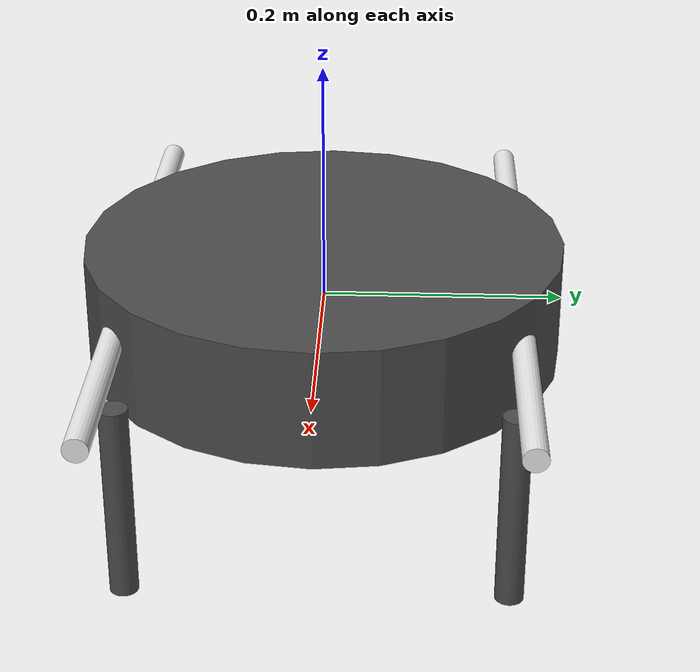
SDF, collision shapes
<?xml version="1.0" encoding="UTF-8"?>
<sdf version='1.9'>
  <model name='f450'>
    <include merge='true'>
      <uri>model://f450/f450_base_model.sdf</uri>
    </include>
    <plugin filename="gz-sim-multicopter-motor-model-system" name="gz::sim::systems::MulticopterMotorModel">
      <jointName>prop_0_joint</jointName>
      <linkName>prop_0_link</linkName>
      <turningDirection>ccw</turningDirection>
      <timeConstantUp>0.0125</timeConstantUp>
      <timeConstantDown>0.025</timeConstantDown>
      <maxRotVelocity>1000.0</maxRotVelocity>
      <motorConstant>8.54858e-06</motorConstant>
      <momentConstant>0.016</momentConstant>
      <commandSubTopic>command/motor_speed</commandSubTopic>
      <motorNumber>0</motorNumber>
      <rotorDragCoefficient>8.06428e-05</rotorDragCoefficient>
      <rollingMomentCoefficient>1e-06</rollingMomentCoefficient>
      <rotorVelocitySlowdownSim>10</rotorVelocitySlowdownSim>
      <motorType>velocity</motorType>
    </plugin>
    <plugin filename="gz-sim-multicopter-motor-model-system" name="gz::sim::systems::MulticopterMotorModel">
      <jointName>prop_1_joint</jointName>
      <linkName>prop_1_link</linkName>
      <turningDirection>ccw</turningDirection>
      <timeConstantUp>0.0125</timeConstantUp>
      <timeConstantDown>0.025</timeConstantDown>
      <maxRotVelocity>1000.0</maxRotVelocity>
      <motorConstant>8.54858e-06</motorConstant>
      <momentConstant>0.016</momentConstant>
      <commandSubTopic>command/motor_speed</commandSubTopic>
      <motorNumber>1</motorNumber>
      <rotorDragCoefficient>8.06428e-05</rotorDragCoefficient>
      <rollingMomentCoefficient>1e-06</rollingMomentCoefficient>
      <rotorVelocitySlowdownSim>10</rotorVelocitySlowdownSim>
      <motorType>velocity</motorType>
    </plugin>
    <plugin filename="gz-sim-multicopter-motor-model-system" name="gz::sim::systems::MulticopterMotorModel">
      <jointName>prop_2_joint</jointName>
      <linkName>prop_2_link</linkName>
      <turningDirection>cw</turningDirection>
      <timeConstantUp>0.0125</timeConstantUp>
      <timeConstantDown>0.025</timeConstantDown>
      <maxRotVelocity>1000.0</maxRotVelocity>
      <motorConstant>8.54858e-06</motorConstant>
      <momentConstant>0.016</momentConstant>
      <commandSubTopic>command/motor_speed</commandSubTopic>
      <motorNumber>2</motorNumber>
      <rotorDragCoefficient>8.06428e-05</rotorDragCoefficient>
      <rollingMomentCoefficient>1e-06</rollingMomentCoefficient>
      <rotorVelocitySlowdownSim>10</rotorVelocitySlowdownSim>
      <motorType>velocity</motorType>
    </plugin>
    <plugin filename="gz-sim-multicopter-motor-model-system" name="gz::sim::systems::MulticopterMotorModel">
      <jointName>prop_3_joint</jointName>
      <linkName>prop_3_link</linkName>
      <turningDirection>cw</turningDirection>
      <timeConstantUp>0.0125</timeConstantUp>
      <timeConstantDown>0.025</timeConstantDown>
      <maxRotVelocity>1000.0</maxRotVelocity>
      <motorConstant>8.54858e-06</motorConstant>
      <momentConstant>0.016</momentConstant>
      <commandSubTopic>command/motor_speed</commandSubTopic>
      <motorNumber>3</motorNumber>
      <rotorDragCoefficient>8.06428e-05</rotorDragCoefficient>
      <rollingMomentCoefficient>1e-06</rollingMomentCoefficient>
      <rotorVelocitySlowdownSim>10</rotorVelocitySlowdownSim>
      <motorType>velocity</motorType>
    </plugin>
  </model>
</sdf>

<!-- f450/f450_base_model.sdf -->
<sdf version="1.6">
  <model name="f450_base_model">

    <link name="base_link">
      <!-- Body physics {-->
      <inertial>
        <mass>1.7</mass>
        <inertia>
          <ixx>0.01735416666666667</ixx>
          <ixy>0</ixy>
          <ixz>0</ixz>
          <iyy>0.01735416666666667</iyy>
          <iyz>0</iyz>
          <izz>0.034</izz>
        </inertia>
      </inertial>
      <collision name="base_link_collision">
        <pose>
          <x>0</x>
          <y>0</y>
          <z>-0.05</z>
          <roll>0</roll>
          <pitch>0</pitch>
          <yaw>0</yaw>
        </pose>
        <geometry>
          <cylinder>
            <length>0.1</length>
            <radius>0.2</radius>
          </cylinder>
        </geometry>
        <surface>
          <contact>
            <ode>
              <min_depth>0.001</min_depth>
              <max_vel>0.0</max_vel>
            </ode>
          </contact>
          <friction>
            <ode/>
          </friction>
        </surface>
      </collision>
      <plugin filename="libgazebo_multirotor_base_plugin.so" name="multirotor_base_plugin">
        <robotNamespace/>
        <linkName>base_link</linkName>
        <rotorVelocitySlowdownSim>0.0159236</rotorVelocitySlowdownSim>
      </plugin>
      <!-- Body visuals {-->
      <!-- Boards {-->
      <visual name="lower_central_board_visual">
        <pose>0 0 -0.05 0 0 0</pose>
        <geometry>
          <mesh>
            <uri>model://f450/meshes/dji_f450_central_bottom.dae</uri>
            <scale>1 1 1</scale>
          </mesh>
        </geometry>
        <material>
          <script>
            <name>Gazebo/DarkGrey</name>
            <uri>file://media/materials/scripts/gazebo.material</uri>
          </script>
        </material>
      </visual>
      <visual name="upper_central_board_visual">
        <pose>0 0 -0.012000000000000004 0 0 0</pose>
        <geometry>
          <mesh>
            <uri>model://f450/meshes/dji_f450_central_top.dae</uri>
            <scale>1 1 1</scale>
          </mesh>
        </geometry>
        <material>
          <script>
            <name>Gazebo/DarkGrey</name>
            <uri>file://media/materials/scripts/gazebo.material</uri>
          </script>
        </material>
      </visual>
      <!-- Arms {-->
      <visual name="front_right_arm_visual">
        <pose>0.045961940777125586 -0.045961940777125586 -0.012000000000000004 0 0 -0.7853981633974483</pose>
        <geometry>
          <mesh>
            <uri>model://f450/meshes/dji_f450_arm.dae</uri>
            <scale>1 1 1</scale>
          </mesh>
        </geometry>
        <material>
          <script>
            <name>Gazebo/White</name>
            <uri>file://media/materials/scripts/gazebo.material</uri>
          </script>
        </material>
      </visual>
      <visual name="front_left_arm_visual">
        <pose>0.045961940777125586 0.045961940777125586 -0.012000000000000004 0 0 0.7853981633974483</pose>
        <geometry>
          <mesh>
            <uri>model://f450/meshes/dji_f450_arm.dae</uri>
            <scale>1 1 1</scale>
          </mesh>
        </geometry>
        <material>
          <script>
            <name>Gazebo/White</name>
            <uri>file://media/materials/scripts/gazebo.material</uri>
          </script>
        </material>
      </visual>
      <visual name="back_right_arm_visual">
        <pose>-0.045961940777125586 -0.045961940777125586 -0.012000000000000004 0 0 -2.356194490192345</pose>
        <geometry>
          <mesh>
            <uri>model://f450/meshes/dji_f450_arm.dae</uri>
            <scale>1 1 1</scale>
          </mesh>
        </geometry>
        <material>
          <script>
            <name>Gazebo/Red</name>
            <uri>file://media/materials/scripts/gazebo.material</uri>
          </script>
        </material>
      </visual>
      <visual name="back_left_arm_visual">
        <pose>-0.045961940777125586 0.045961940777125586 -0.012000000000000004 0 0 2.356194490192345</pose>
        <geometry>
          <mesh>
            <uri>model://f450/meshes/dji_f450_arm.dae</uri>
            <scale>1 1 1</scale>
          </mesh>
        </geometry>
        <material>
          <script>
            <name>Gazebo/Red</name>
            <uri>file://media/materials/scripts/gazebo.material</uri>
          </script>
        </material>
      </visual>
      <!-- Intel NUC {-->
      <visual name="NUC_visual">
        <pose>0 0 0.023 0 0 0</pose>
        <geometry>
          <mesh>
            <uri>model://f450/meshes/dji_f450_nuc.dae</uri>
            <scale>0.001 0.001 0.001</scale>
          </mesh>
        </geometry>
        <material>
          <script>
            <name>Gazebo/DarkGrey</name>
            <uri>file://media/materials/scripts/gazebo.material</uri>
          </script>
        </material>
      </visual>
      <!-- Pixhawk {-->
      <visual name="pixhawk_visual">
        <pose>0 0 -0.0425 0 0 0</pose>
        <geometry>
          <mesh>
            <uri>model://f450/meshes/pixhawk.dae</uri>
            <scale>1 1 1</scale>
          </mesh>
        </geometry>
        <material>
          <script>
            <name>Gazebo/DarkGrey</name>
            <uri>file://media/materials/scripts/gazebo.material</uri>
          </script>
        </material>
      </visual>
      <!-- Legs {-->
      <visual name="front_right_leg_visual">
        <pose>0.15754339084836277 -0.15754339084836277 -0.11000000000000001 0 0 2.356194490192345</pose>
        <geometry>
          <mesh>
            <uri>model://f450/meshes/dji_f450_leg_170mm.dae</uri>
            <scale>0.001 0.001 0.001</scale>
          </mesh>
        </geometry>
        <material>
          <script>
            <name>Gazebo/White</name>
            <uri>file://media/materials/scripts/gazebo.material</uri>
          </script>
        </material>
      </visual>
      <collision name="front_right_leg_collision">
        <pose>0.15754339084836277 -0.15754339084836277 -0.11000000000000001 0 0 2.356194490192345</pose>
        <geometry>
          <cylinder>
            <length>0.17</length>
            <radius>0.012</radius>
          </cylinder>
        </geometry>
        <surface>
          <contact>
            <ode>
              <min_depth>0.01</min_depth>
              <max_vel>0.0</max_vel>
            </ode>
          </contact>
          <friction>
            <ode/>
          </friction>
        </surface>
      </collision>
      <visual name="front_left_leg_visual">
        <pose>0.15754339084836277 0.15754339084836277 -0.11000000000000001 0 0 -2.356194490192345</pose>
        <geometry>
          <mesh>
            <uri>model://f450/meshes/dji_f450_leg_170mm.dae</uri>
            <scale>0.001 0.001 0.001</scale>
          </mesh>
        </geometry>
        <material>
          <script>
            <name>Gazebo/White</name>
            <uri>file://media/materials/scripts/gazebo.material</uri>
          </script>
        </material>
      </visual>
      <collision name="front_left_leg_collision">
        <pose>0.15754339084836277 0.15754339084836277 -0.11000000000000001 0 0 -2.356194490192345</pose>
        <geometry>
          <cylinder>
            <length>0.17</length>
            <radius>0.012</radius>
          </cylinder>
        </geometry>
        <surface>
          <contact>
            <ode>
              <min_depth>0.01</min_depth>
              <max_vel>0.0</max_vel>
            </ode>
          </contact>
          <friction>
            <ode/>
          </friction>
        </surface>
      </collision>
      <visual name="back_right_leg_visual">
        <pose>-0.15754339084836277 -0.15754339084836277 -0.11000000000000001 0 0 0.7853981633974483</pose>
        <geometry>
          <mesh>
            <uri>model://f450/meshes/dji_f450_leg_170mm.dae</uri>
            <scale>0.001 0.001 0.001</scale>
          </mesh>
        </geometry>
        <material>
          <script>
            <name>Gazebo/Red</name>
            <uri>file://media/materials/scripts/gazebo.material</uri>
          </script>
        </material>
      </visual>
      <collision name="back_right_leg_collision">
        <pose>-0.15754339084836277 -0.15754339084836277 -0.11000000000000001 0 0 0.7853981633974483</pose>
        <geometry>
          <cylinder>
            <length>0.17</length>
            <radius>0.012</radius>
          </cylinder>
        </geometry>
        <surface>
          <contact>
            <ode>
              <min_depth>0.01</min_depth>
              <max_vel>0.0</max_vel>
            </ode>
          </contact>
          <friction>
            <ode/>
          </friction>
        </surface>
      </collision>
      <visual name="back_left_leg_visual">
        <pose>-0.15754339084836277 0.15754339084836277 -0.11000000000000001 0 0 -0.7853981633974483</pose>
        <geometry>
          <mesh>
            <uri>model://f450/meshes/dji_f450_leg_170mm.dae</uri>
            <scale>0.001 0.001 0.001</scale>
          </mesh>
        </geometry>
        <material>
          <script>
            <name>Gazebo/Red</name>
            <uri>file://media/materials/scripts/gazebo.material</uri>
          </script>
        </material>
      </visual>
      <collision name="back_left_leg_collision">
        <pose>-0.15754339084836277 0.15754339084836277 -0.11000000000000001 0 0 -0.7853981633974483</pose>
        <geometry>
          <cylinder>
            <length>0.17</length>
            <radius>0.012</radius>
          </cylinder>
        </geometry>
        <surface>
          <contact>
            <ode>
              <min_depth>0.01</min_depth>
              <max_vel>0.0</max_vel>
            </ode>
          </contact>
          <friction>
            <ode/>
          </friction>
        </surface>
      </collision>
      <!-- Motors {-->
      <visual name="front_right_motor_visual">
        <pose>0.1626345596729059 -0.1626345596729059 -0.012000000000000004 0 0 0</pose>
        <geometry>
          <mesh>
            <uri>model://f450/meshes/dji_f450_rotor.dae</uri>
            <scale>1 1 1</scale>
          </mesh>
        </geometry>
        <material>
          <script>
            <name>Gazebo/Black</name>
            <uri>file://media/materials/scripts/gazebo.material</uri>
          </script>
        </material>
      </visual>
      <visual name="front_left_motor_visual">
        <pose>0.1626345596729059 0.1626345596729059 -0.012000000000000004 0 0 0</pose>
        <geometry>
          <mesh>
            <uri>model://f450/meshes/dji_f450_rotor.dae</uri>
            <scale>1 1 1</scale>
          </mesh>
        </geometry>
        <material>
          <script>
            <name>Gazebo/Black</name>
            <uri>file://media/materials/scripts/gazebo.material</uri>
          </script>
        </material>
      </visual>
      <visual name="back_right_motor_visual">
        <pose>-0.1626345596729059 -0.1626345596729059 -0.012000000000000004 0 0 0</pose>
        <geometry>
          <mesh>
            <uri>model://f450/meshes/dji_f450_rotor.dae</uri>
            <scale>1 1 1</scale>
          </mesh>
        </geometry>
        <material>
          <script>
            <name>Gazebo/Black</name>
            <uri>file://media/materials/scripts/gazebo.material</uri>
          </script>
        </material>
      </visual>
      <visual name="back_left_motor_visual">
        <pose>-0.1626345596729059 0.1626345596729059 -0.012000000000000004 0 0 0</pose>
        <geometry>
          <mesh>
            <uri>model://f450/meshes/dji_f450_rotor.dae</uri>
            <scale>1 1 1</scale>
          </mesh>
        </geometry>
        <material>
          <script>
            <name>Gazebo/Black</name>
            <uri>file://media/materials/scripts/gazebo.material</uri>
          </script>
        </material>
      </visual>
      <!-- Battery mount and battery {-->
      <visual name="battery_mount_visual">
        <pose>0 0 -0.078 0 0 1.5707963267948966</pose>
        <geometry>
          <mesh>
            <uri>model://f450/meshes/dji_f450_battery_mount.dae</uri>
            <scale>0.001 0.001 0.001</scale>
          </mesh>
        </geometry>
        <material>
          <script>
            <name>Gazebo/DarkGrey</name>
            <uri>file://media/materials/scripts/gazebo.material</uri>
          </script>
        </material>
      </visual>
      <visual name="battery_visual">
        <pose>0 0 -0.077 0 0 1.5707963267948966</pose>
        <geometry>
          <box>
            <size>0.13 0.042 0.044</size>
          </box>
        </geometry>
        <material>
          <script>
            <name>Gazebo/Grey</name>
            <uri>file://media/materials/scripts/gazebo.material</uri>
          </script>
        </material>
      </visual>
      <sensor name="air_pressure_sensor" type="air_pressure">
        <always_on>1</always_on>
        <update_rate>50</update_rate>
        <air_pressure>
          <pressure>
            <noise type="gaussian">
              <mean>0</mean>
              <stddev>0.01</stddev>
            </noise>
          </pressure>
        </air_pressure>
      </sensor>
      <sensor name="imu_sensor" type="imu">
        <always_on>1</always_on>
        <update_rate>250</update_rate>
        <imu>
          <angular_velocity>
            <x>
              <noise type="gaussian">
                <mean>0</mean>
                <stddev>0.00018665</stddev>
                <dynamic_bias_stddev>3.8785e-05</dynamic_bias_stddev>
                <dynamic_bias_correlation_time>1000</dynamic_bias_correlation_time>
              </noise>
            </x>
            <y>
              <noise type="gaussian">
                <mean>0</mean>
                <stddev>0.00018665</stddev>
                <dynamic_bias_stddev>3.8785e-05</dynamic_bias_stddev>
                <dynamic_bias_correlation_time>1000</dynamic_bias_correlation_time>
              </noise>
            </y>
            <z>
              <noise type="gaussian">
                <mean>0</mean>
                <stddev>0.00018665</stddev>
                <dynamic_bias_stddev>3.8785e-05</dynamic_bias_stddev>
                <dynamic_bias_correlation_time>1000</dynamic_bias_correlation_time>
              </noise>
            </z>
          </angular_velocity>
          <linear_acceleration>
            <x>
              <noise type="gaussian">
                <mean>0</mean>
                <stddev>0.00186</stddev>
                <dynamic_bias_stddev>0.006</dynamic_bias_stddev>
                <dynamic_bias_correlation_time>300</dynamic_bias_correlation_time>
              </noise>
            </x>
            <y>
              <noise type="gaussian">
                <mean>0</mean>
                <stddev>0.00186</stddev>
                <dynamic_bias_stddev>0.006</dynamic_bias_stddev>
                <dynamic_bias_correlation_time>300</dynamic_bias_correlation_time>
              </noise>
            </y>
            <z>
              <noise type="gaussian">
                <mean>0</mean>
                <stddev>0.00186</stddev>
                <dynamic_bias_stddev>0.006</dynamic_bias_stddev>
                <dynamic_bias_correlation_time>300</dynamic_bias_correlation_time>
              </noise>
            </z>
          </linear_acceleration>
        </imu>
      </sensor>
      <sensor name="navsat_sensor" type="navsat">
        <always_on>1</always_on>
        <update_rate>30</update_rate>
      </sensor>
    </link>

    <link name="prop_0_link">
      <pose>0.1626345596729059 -0.1626345596729059 0.011499999999999996 0 0 0</pose>
      <inertial>
        <mass>0.005</mass>
        <inertia>
          <ixx>0.0001</ixx>
          <ixy>0</ixy>
          <ixz>0</ixz>
          <iyy>0.0001</iyy>
          <iyz>0</iyz>
          <izz>0.0001</izz>
        </inertia>
      </inertial>
      <visual name="prop_0_visual">
        <pose>0 0 0 0 0 0</pose>
        <geometry>
          <mesh>
            <uri>model://f450/meshes/dji_f450_prop.dae</uri>
            <scale>1 1 1</scale>
          </mesh>
        </geometry>
        <material>
          <script>
            <name>Gazebo/White</name>
            <uri>file://media/materials/scripts/gazebo.material</uri>
          </script>
        </material>
      </visual>
      <collision name="prop_0_link_collision">
        <pose>0 0 0 0 1.5707963267948966 0</pose>
        <geometry>
          <cylinder>
            <length>0.236</length>
            <radius>0.01</radius>
          </cylinder>
        </geometry>
        <surface>
          <contact>
            <ode>
              <min_depth>0.01</min_depth>
              <max_vel>0.0</max_vel>
            </ode>
          </contact>
          <friction>
            <ode/>
          </friction>
        </surface>
      </collision>
    </link>

    <joint name="prop_0_joint" type="revolute">
      <parent>base_link</parent>
      <child>prop_0_link</child>
      <axis>
        <xyz>0 0 1</xyz>
        <limit>
          <lower>-1e+16</lower>
          <upper>1e+16</upper>
        </limit>
        <dynamics>
          <spring_reference>0</spring_reference>
          <spring_stiffness>0</spring_stiffness>
        </dynamics>
        <use_parent_model_frame>1</use_parent_model_frame>
      </axis>
    </joint>

    <link name="prop_1_link">
      <pose>-0.1626345596729059 0.1626345596729059 0.011499999999999996 0 0 0</pose>
      <inertial>
        <mass>0.005</mass>
        <inertia>
          <ixx>0.0001</ixx>
          <ixy>0</ixy>
          <ixz>0</ixz>
          <iyy>0.0001</iyy>
          <iyz>0</iyz>
          <izz>0.0001</izz>
        </inertia>
      </inertial>
      <visual name="prop_1_visual">
        <pose>0 0 0 0 0 0</pose>
        <geometry>
          <mesh>
            <uri>model://f450/meshes/dji_f450_prop.dae</uri>
            <scale>1 1 1</scale>
          </mesh>
        </geometry>
        <material>
          <script>
            <name>Gazebo/White</name>
            <uri>file://media/materials/scripts/gazebo.material</uri>
          </script>
        </material>
      </visual>
      <collision name="prop_1_link_collision">
        <pose>0 0 0 0 1.5707963267948966 0</pose>
        <geometry>
          <cylinder>
            <length>0.236</length>
            <radius>0.01</radius>
          </cylinder>
        </geometry>
        <surface>
          <contact>
            <ode>
              <min_depth>0.01</min_depth>
              <max_vel>0.0</max_vel>
            </ode>
          </contact>
          <friction>
            <ode/>
          </friction>
        </surface>
      </collision>
    </link>

    <joint name="prop_1_joint" type="revolute">
      <parent>base_link</parent>
      <child>prop_1_link</child>
      <axis>
        <xyz>0 0 1</xyz>
        <limit>
          <lower>-1e+16</lower>
          <upper>1e+16</upper>
        </limit>
        <dynamics>
          <spring_reference>0</spring_reference>
          <spring_stiffness>0</spring_stiffness>
        </dynamics>
        <use_parent_model_frame>1</use_parent_model_frame>
      </axis>
    </joint>

    <link name="prop_2_link">
      <pose>0.1626345596729059 0.1626345596729059 0.011499999999999996 0 0 0</pose>
      <inertial>
        <mass>0.005</mass>
        <inertia>
          <ixx>0.0001</ixx>
          <ixy>0</ixy>
          <ixz>0</ixz>
          <iyy>0.0001</iyy>
          <iyz>0</iyz>
          <izz>0.0001</izz>
        </inertia>
      </inertial>
      <visual name="prop_2_visual">
        <pose>0 0 0 0 0 0</pose>
        <geometry>
          <mesh>
            <uri>model://f450/meshes/dji_f450_prop.dae</uri>
            <scale>-1 1 1</scale>
          </mesh>
        </geometry>
        <material>
          <script>
            <name>Gazebo/White</name>
            <uri>file://media/materials/scripts/gazebo.material</uri>
          </script>
        </material>
      </visual>
      <collision name="prop_2_link_collision">
        <pose>0 0 0 0 1.5707963267948966 0</pose>
        <geometry>
          <cylinder>
            <length>0.236</length>
            <radius>0.01</radius>
          </cylinder>
        </geometry>
        <surface>
          <contact>
            <ode>
              <min_depth>0.01</min_depth>
              <max_vel>0.0</max_vel>
            </ode>
          </contact>
          <friction>
            <ode/>
          </friction>
        </surface>
      </collision>
    </link>

    <joint name="prop_2_joint" type="revolute">
      <parent>base_link</parent>
      <child>prop_2_link</child>
      <axis>
        <xyz>0 0 1</xyz>
        <limit>
          <lower>-1e+16</lower>
          <upper>1e+16</upper>
        </limit>
        <dynamics>
          <spring_reference>0</spring_reference>
          <spring_stiffness>0</spring_stiffness>
        </dynamics>
        <use_parent_model_frame>1</use_parent_model_frame>
      </axis>
    </joint>

    <link name="prop_3_link">
      <pose>-0.1626345596729059 -0.1626345596729059 0.011499999999999996 0 0 0</pose>
      <inertial>
        <mass>0.005</mass>
        <inertia>
          <ixx>0.0001</ixx>
          <ixy>0</ixy>
          <ixz>0</ixz>
          <iyy>0.0001</iyy>
          <iyz>0</iyz>
          <izz>0.0001</izz>
        </inertia>
      </inertial>
      <visual name="prop_3_visual">
        <pose>0 0 0 0 0 0</pose>
        <geometry>
          <mesh>
            <uri>model://f450/meshes/dji_f450_prop.dae</uri>
            <scale>-1 1 1</scale>
          </mesh>
        </geometry>
        <material>
          <script>
            <name>Gazebo/White</name>
            <uri>file://media/materials/scripts/gazebo.material</uri>
          </script>
        </material>
      </visual>
      <collision name="prop_3_link_collision">
        <pose>0 0 0 0 1.5707963267948966 0</pose>
        <geometry>
          <cylinder>
            <length>0.236</length>
            <radius>0.01</radius>
          </cylinder>
        </geometry>
        <surface>
          <contact>
            <ode>
              <min_depth>0.01</min_depth>
              <max_vel>0.0</max_vel>
            </ode>
          </contact>
          <friction>
            <ode/>
          </friction>
        </surface>
      </collision>
    </link>

    <joint name="prop_3_joint" type="revolute">
      <parent>base_link</parent>
      <child>prop_3_link</child>
      <axis>
        <xyz>0 0 1</xyz>
        <limit>
          <lower>-1e+16</lower>
          <upper>1e+16</upper>
        </limit>
        <dynamics>
          <spring_reference>0</spring_reference>
          <spring_stiffness>0</spring_stiffness>
        </dynamics>
        <use_parent_model_frame>1</use_parent_model_frame>
      </axis>
    </joint>

  </model>
</sdf>
